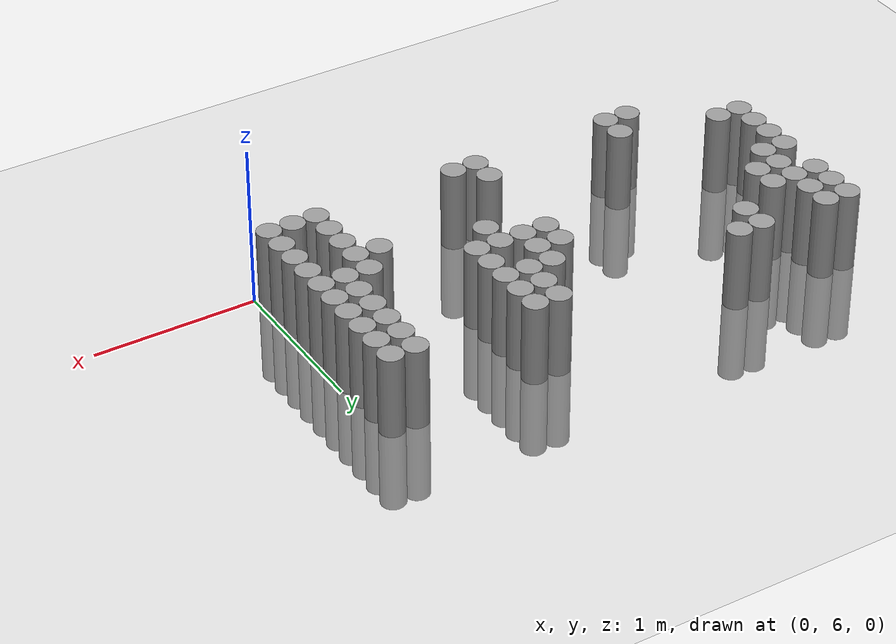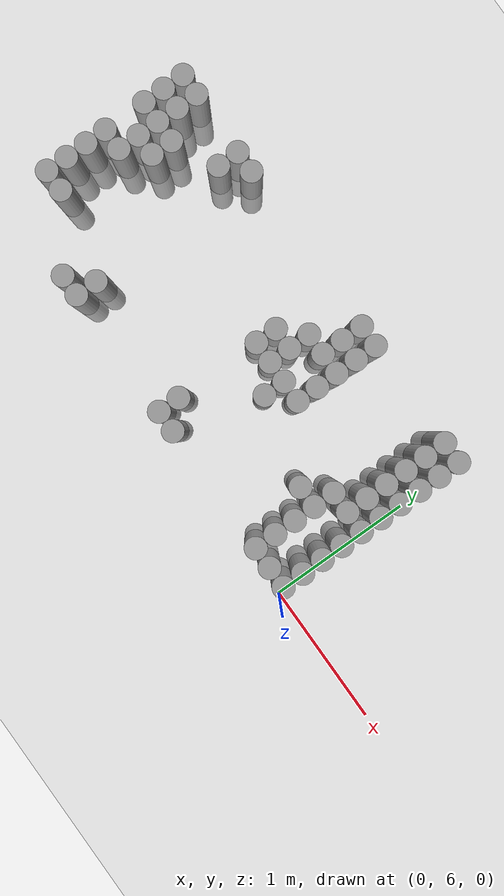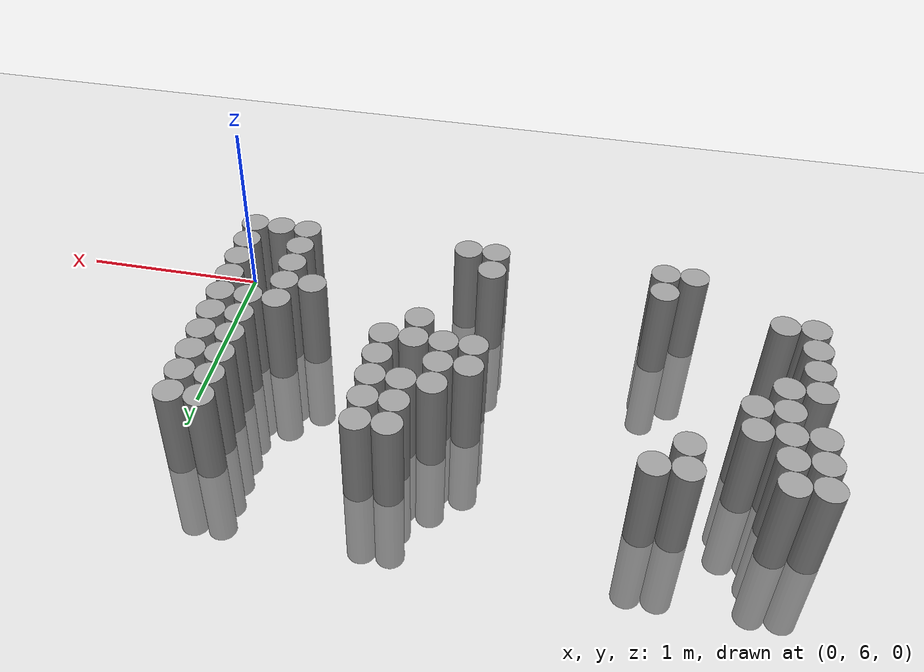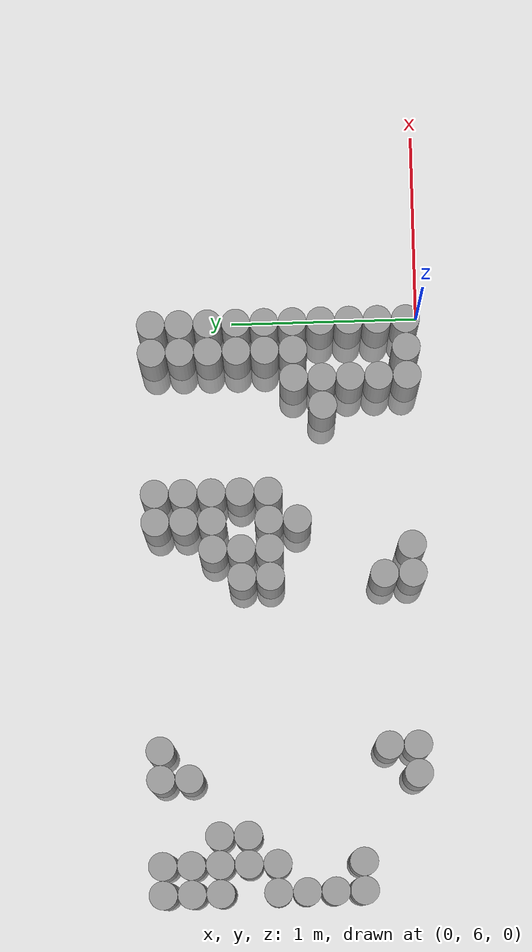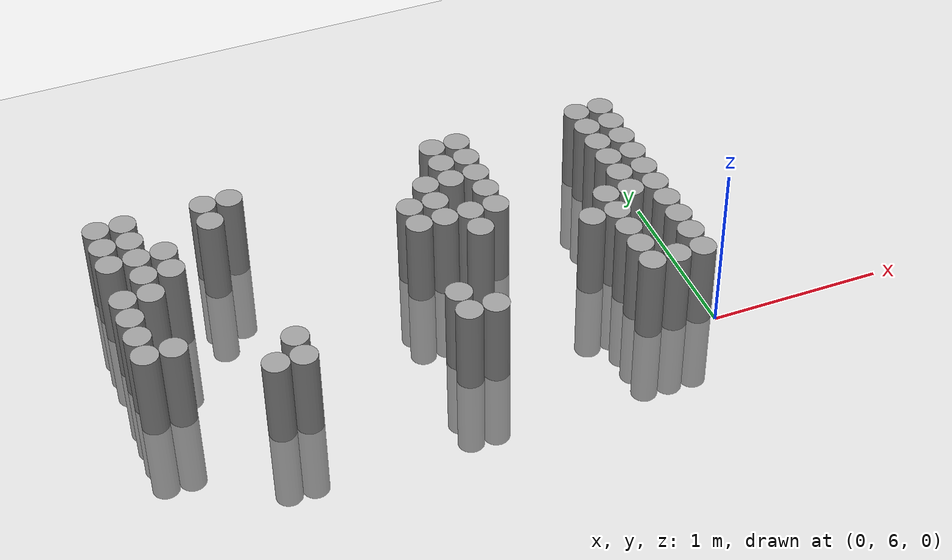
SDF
<sdf version="1.6">
 <world name="default">
  <model name="ground_plane">
   <static>1</static>
   <static>1</static>
   <link name="link">
    <collision name="collision">
     <geometry><plane><normal>0 0 1</normal><size>100 100</size></plane></geometry>
     <surface><friction><ode><mu>100</mu><mu2>50</mu2></ode></friction></surface>
    </collision>
    <visual name="visual">
     <cast_shadows>0</cast_shadows>
     <geometry><plane><normal>0 0 1</normal><size>100 100</size></plane></geometry>
     <material>
      <script><uri>file://media/materials/scripts/gazebo.material</uri><name>Gazebo/Grey</name></script>
     </material>
    </visual>
   </link>
  </model>
  <model name="unit_cylinder_176">
   <static>1</static>
   <pose>-3.075000 6.375000 0.000000 0.000000 0.000000 0.000000</pose>
   <link name="link">
    <inertial>
     <mass>1</mass>
     <inertia><ixx>0.145833</ixx><ixy>0</ixy><ixz>0</ixz><iyy>0.145833</iyy><iyz>0</iyz><izz>0.125</izz></inertia>
    </inertial>
    <collision name="collision">
     <geometry><cylinder><radius>0.075000</radius><length>1</length></cylinder></geometry>
    </collision>
    <visual name="visual">
     <geometry><cylinder><radius>0.075000</radius><length>1</length></cylinder></geometry>
     <material>
      <script><name>Gazebo/Grey</name><uri>file://media/materials/scripts/gazebo.material</uri></script>
     </material>
    </visual>
   </link>
  </model>
  <model name="unit_cylinder_177">
   <static>1</static>
   <pose>-3.075000 6.525000 0.000000 0.000000 0.000000 0.000000</pose>
   <link name="link">
    <inertial>
     <mass>1</mass>
     <inertia><ixx>0.145833</ixx><ixy>0</ixy><ixz>0</ixz><iyy>0.145833</iyy><iyz>0</iyz><izz>0.125</izz></inertia>
    </inertial>
    <collision name="collision">
     <geometry><cylinder><radius>0.075000</radius><length>1</length></cylinder></geometry>
    </collision>
    <visual name="visual">
     <geometry><cylinder><radius>0.075000</radius><length>1</length></cylinder></geometry>
     <material>
      <script><name>Gazebo/Grey</name><uri>file://media/materials/scripts/gazebo.material</uri></script>
     </material>
    </visual>
   </link>
  </model>
  <model name="unit_cylinder_178">
   <static>1</static>
   <pose>-3.075000 6.675000 0.000000 0.000000 0.000000 0.000000</pose>
   <link name="link">
    <inertial>
     <mass>1</mass>
     <inertia><ixx>0.145833</ixx><ixy>0</ixy><ixz>0</ixz><iyy>0.145833</iyy><iyz>0</iyz><izz>0.125</izz></inertia>
    </inertial>
    <collision name="collision">
     <geometry><cylinder><radius>0.075000</radius><length>1</length></cylinder></geometry>
    </collision>
    <visual name="visual">
     <geometry><cylinder><radius>0.075000</radius><length>1</length></cylinder></geometry>
     <material>
      <script><name>Gazebo/Grey</name><uri>file://media/materials/scripts/gazebo.material</uri></script>
     </material>
    </visual>
   </link>
  </model>
  <model name="unit_cylinder_179">
   <static>1</static>
   <pose>-3.075000 6.825000 0.000000 0.000000 0.000000 0.000000</pose>
   <link name="link">
    <inertial>
     <mass>1</mass>
     <inertia><ixx>0.145833</ixx><ixy>0</ixy><ixz>0</ixz><iyy>0.145833</iyy><iyz>0</iyz><izz>0.125</izz></inertia>
    </inertial>
    <collision name="collision">
     <geometry><cylinder><radius>0.075000</radius><length>1</length></cylinder></geometry>
    </collision>
    <visual name="visual">
     <geometry><cylinder><radius>0.075000</radius><length>1</length></cylinder></geometry>
     <material>
      <script><name>Gazebo/Grey</name><uri>file://media/materials/scripts/gazebo.material</uri></script>
     </material>
    </visual>
   </link>
  </model>
  <model name="unit_cylinder_180">
   <static>1</static>
   <pose>-3.075000 7.125000 0.000000 0.000000 0.000000 0.000000</pose>
   <link name="link">
    <inertial>
     <mass>1</mass>
     <inertia><ixx>0.145833</ixx><ixy>0</ixy><ixz>0</ixz><iyy>0.145833</iyy><iyz>0</iyz><izz>0.125</izz></inertia>
    </inertial>
    <collision name="collision">
     <geometry><cylinder><radius>0.075000</radius><length>1</length></cylinder></geometry>
    </collision>
    <visual name="visual">
     <geometry><cylinder><radius>0.075000</radius><length>1</length></cylinder></geometry>
     <material>
      <script><name>Gazebo/Grey</name><uri>file://media/materials/scripts/gazebo.material</uri></script>
     </material>
    </visual>
   </link>
  </model>
  <model name="unit_cylinder_181">
   <static>1</static>
   <pose>-3.075000 7.275000 0.000000 0.000000 0.000000 0.000000</pose>
   <link name="link">
    <inertial>
     <mass>1</mass>
     <inertia><ixx>0.145833</ixx><ixy>0</ixy><ixz>0</ixz><iyy>0.145833</iyy><iyz>0</iyz><izz>0.125</izz></inertia>
    </inertial>
    <collision name="collision">
     <geometry><cylinder><radius>0.075000</radius><length>1</length></cylinder></geometry>
    </collision>
    <visual name="visual">
     <geometry><cylinder><radius>0.075000</radius><length>1</length></cylinder></geometry>
     <material>
      <script><name>Gazebo/Grey</name><uri>file://media/materials/scripts/gazebo.material</uri></script>
     </material>
    </visual>
   </link>
  </model>
  <model name="unit_cylinder_182">
   <static>1</static>
   <pose>-3.075000 7.425000 0.000000 0.000000 0.000000 0.000000</pose>
   <link name="link">
    <inertial>
     <mass>1</mass>
     <inertia><ixx>0.145833</ixx><ixy>0</ixy><ixz>0</ixz><iyy>0.145833</iyy><iyz>0</iyz><izz>0.125</izz></inertia>
    </inertial>
    <collision name="collision">
     <geometry><cylinder><radius>0.075000</radius><length>1</length></cylinder></geometry>
    </collision>
    <visual name="visual">
     <geometry><cylinder><radius>0.075000</radius><length>1</length></cylinder></geometry>
     <material>
      <script><name>Gazebo/Grey</name><uri>file://media/materials/scripts/gazebo.material</uri></script>
     </material>
    </visual>
   </link>
  </model>
  <model name="unit_cylinder_185">
   <static>1</static>
   <pose>-2.925000 6.375000 0.000000 0.000000 0.000000 0.000000</pose>
   <link name="link">
    <inertial>
     <mass>1</mass>
     <inertia><ixx>0.145833</ixx><ixy>0</ixy><ixz>0</ixz><iyy>0.145833</iyy><iyz>0</iyz><izz>0.125</izz></inertia>
    </inertial>
    <collision name="collision">
     <geometry><cylinder><radius>0.075000</radius><length>1</length></cylinder></geometry>
    </collision>
    <visual name="visual">
     <geometry><cylinder><radius>0.075000</radius><length>1</length></cylinder></geometry>
     <material>
      <script><name>Gazebo/Grey</name><uri>file://media/materials/scripts/gazebo.material</uri></script>
     </material>
    </visual>
   </link>
  </model>
  <model name="unit_cylinder_186">
   <static>1</static>
   <pose>-2.925000 6.825000 0.000000 0.000000 0.000000 0.000000</pose>
   <link name="link">
    <inertial>
     <mass>1</mass>
     <inertia><ixx>0.145833</ixx><ixy>0</ixy><ixz>0</ixz><iyy>0.145833</iyy><iyz>0</iyz><izz>0.125</izz></inertia>
    </inertial>
    <collision name="collision">
     <geometry><cylinder><radius>0.075000</radius><length>1</length></cylinder></geometry>
    </collision>
    <visual name="visual">
     <geometry><cylinder><radius>0.075000</radius><length>1</length></cylinder></geometry>
     <material>
      <script><name>Gazebo/Grey</name><uri>file://media/materials/scripts/gazebo.material</uri></script>
     </material>
    </visual>
   </link>
  </model>
  <model name="unit_cylinder_187">
   <static>1</static>
   <pose>-2.925000 6.975000 0.000000 0.000000 0.000000 0.000000</pose>
   <link name="link">
    <inertial>
     <mass>1</mass>
     <inertia><ixx>0.145833</ixx><ixy>0</ixy><ixz>0</ixz><iyy>0.145833</iyy><iyz>0</iyz><izz>0.125</izz></inertia>
    </inertial>
    <collision name="collision">
     <geometry><cylinder><radius>0.075000</radius><length>1</length></cylinder></geometry>
    </collision>
    <visual name="visual">
     <geometry><cylinder><radius>0.075000</radius><length>1</length></cylinder></geometry>
     <material>
      <script><name>Gazebo/Grey</name><uri>file://media/materials/scripts/gazebo.material</uri></script>
     </material>
    </visual>
   </link>
  </model>
  <model name="unit_cylinder_188">
   <static>1</static>
   <pose>-2.925000 7.125000 0.000000 0.000000 0.000000 0.000000</pose>
   <link name="link">
    <inertial>
     <mass>1</mass>
     <inertia><ixx>0.145833</ixx><ixy>0</ixy><ixz>0</ixz><iyy>0.145833</iyy><iyz>0</iyz><izz>0.125</izz></inertia>
    </inertial>
    <collision name="collision">
     <geometry><cylinder><radius>0.075000</radius><length>1</length></cylinder></geometry>
    </collision>
    <visual name="visual">
     <geometry><cylinder><radius>0.075000</radius><length>1</length></cylinder></geometry>
     <material>
      <script><name>Gazebo/Grey</name><uri>file://media/materials/scripts/gazebo.material</uri></script>
     </material>
    </visual>
   </link>
  </model>
  <model name="unit_cylinder_189">
   <static>1</static>
   <pose>-2.925000 7.275000 0.000000 0.000000 0.000000 0.000000</pose>
   <link name="link">
    <inertial>
     <mass>1</mass>
     <inertia><ixx>0.145833</ixx><ixy>0</ixy><ixz>0</ixz><iyy>0.145833</iyy><iyz>0</iyz><izz>0.125</izz></inertia>
    </inertial>
    <collision name="collision">
     <geometry><cylinder><radius>0.075000</radius><length>1</length></cylinder></geometry>
    </collision>
    <visual name="visual">
     <geometry><cylinder><radius>0.075000</radius><length>1</length></cylinder></geometry>
     <material>
      <script><name>Gazebo/Grey</name><uri>file://media/materials/scripts/gazebo.material</uri></script>
     </material>
    </visual>
   </link>
  </model>
  <model name="unit_cylinder_190">
   <static>1</static>
   <pose>-2.925000 7.425000 0.000000 0.000000 0.000000 0.000000</pose>
   <link name="link">
    <inertial>
     <mass>1</mass>
     <inertia><ixx>0.145833</ixx><ixy>0</ixy><ixz>0</ixz><iyy>0.145833</iyy><iyz>0</iyz><izz>0.125</izz></inertia>
    </inertial>
    <collision name="collision">
     <geometry><cylinder><radius>0.075000</radius><length>1</length></cylinder></geometry>
    </collision>
    <visual name="visual">
     <geometry><cylinder><radius>0.075000</radius><length>1</length></cylinder></geometry>
     <material>
      <script><name>Gazebo/Grey</name><uri>file://media/materials/scripts/gazebo.material</uri></script>
     </material>
    </visual>
   </link>
  </model>
  <model name="unit_cylinder_192">
   <static>1</static>
   <pose>-2.775000 6.975000 0.000000 0.000000 0.000000 0.000000</pose>
   <link name="link">
    <inertial>
     <mass>1</mass>
     <inertia><ixx>0.145833</ixx><ixy>0</ixy><ixz>0</ixz><iyy>0.145833</iyy><iyz>0</iyz><izz>0.125</izz></inertia>
    </inertial>
    <collision name="collision">
     <geometry><cylinder><radius>0.075000</radius><length>1</length></cylinder></geometry>
    </collision>
    <visual name="visual">
     <geometry><cylinder><radius>0.075000</radius><length>1</length></cylinder></geometry>
     <material>
      <script><name>Gazebo/Grey</name><uri>file://media/materials/scripts/gazebo.material</uri></script>
     </material>
    </visual>
   </link>
  </model>
  <model name="unit_cylinder_193">
   <static>1</static>
   <pose>-2.775000 7.125000 0.000000 0.000000 0.000000 0.000000</pose>
   <link name="link">
    <inertial>
     <mass>1</mass>
     <inertia><ixx>0.145833</ixx><ixy>0</ixy><ixz>0</ixz><iyy>0.145833</iyy><iyz>0</iyz><izz>0.125</izz></inertia>
    </inertial>
    <collision name="collision">
     <geometry><cylinder><radius>0.075000</radius><length>1</length></cylinder></geometry>
    </collision>
    <visual name="visual">
     <geometry><cylinder><radius>0.075000</radius><length>1</length></cylinder></geometry>
     <material>
      <script><name>Gazebo/Grey</name><uri>file://media/materials/scripts/gazebo.material</uri></script>
     </material>
    </visual>
   </link>
  </model>
  <model name="unit_cylinder_200">
   <static>1</static>
   <pose>-2.475000 6.075000 0.000000 0.000000 0.000000 0.000000</pose>
   <link name="link">
    <inertial>
     <mass>1</mass>
     <inertia><ixx>0.145833</ixx><ixy>0</ixy><ixz>0</ixz><iyy>0.145833</iyy><iyz>0</iyz><izz>0.125</izz></inertia>
    </inertial>
    <collision name="collision">
     <geometry><cylinder><radius>0.075000</radius><length>1</length></cylinder></geometry>
    </collision>
    <visual name="visual">
     <geometry><cylinder><radius>0.075000</radius><length>1</length></cylinder></geometry>
     <material>
      <script><name>Gazebo/Grey</name><uri>file://media/materials/scripts/gazebo.material</uri></script>
     </material>
    </visual>
   </link>
  </model>
  <model name="unit_cylinder_201">
   <static>1</static>
   <pose>-2.475000 7.275000 0.000000 0.000000 0.000000 0.000000</pose>
   <link name="link">
    <inertial>
     <mass>1</mass>
     <inertia><ixx>0.145833</ixx><ixy>0</ixy><ixz>0</ixz><iyy>0.145833</iyy><iyz>0</iyz><izz>0.125</izz></inertia>
    </inertial>
    <collision name="collision">
     <geometry><cylinder><radius>0.075000</radius><length>1</length></cylinder></geometry>
    </collision>
    <visual name="visual">
     <geometry><cylinder><radius>0.075000</radius><length>1</length></cylinder></geometry>
     <material>
      <script><name>Gazebo/Grey</name><uri>file://media/materials/scripts/gazebo.material</uri></script>
     </material>
    </visual>
   </link>
  </model>
  <model name="unit_cylinder_202">
   <static>1</static>
   <pose>-2.475000 7.425000 0.000000 0.000000 0.000000 0.000000</pose>
   <link name="link">
    <inertial>
     <mass>1</mass>
     <inertia><ixx>0.145833</ixx><ixy>0</ixy><ixz>0</ixz><iyy>0.145833</iyy><iyz>0</iyz><izz>0.125</izz></inertia>
    </inertial>
    <collision name="collision">
     <geometry><cylinder><radius>0.075000</radius><length>1</length></cylinder></geometry>
    </collision>
    <visual name="visual">
     <geometry><cylinder><radius>0.075000</radius><length>1</length></cylinder></geometry>
     <material>
      <script><name>Gazebo/Grey</name><uri>file://media/materials/scripts/gazebo.material</uri></script>
     </material>
    </visual>
   </link>
  </model>
  <model name="unit_cylinder_208">
   <static>1</static>
   <pose>-2.325000 6.075000 0.000000 0.000000 0.000000 0.000000</pose>
   <link name="link">
    <inertial>
     <mass>1</mass>
     <inertia><ixx>0.145833</ixx><ixy>0</ixy><ixz>0</ixz><iyy>0.145833</iyy><iyz>0</iyz><izz>0.125</izz></inertia>
    </inertial>
    <collision name="collision">
     <geometry><cylinder><radius>0.075000</radius><length>1</length></cylinder></geometry>
    </collision>
    <visual name="visual">
     <geometry><cylinder><radius>0.075000</radius><length>1</length></cylinder></geometry>
     <material>
      <script><name>Gazebo/Grey</name><uri>file://media/materials/scripts/gazebo.material</uri></script>
     </material>
    </visual>
   </link>
  </model>
  <model name="unit_cylinder_209">
   <static>1</static>
   <pose>-2.325000 6.225000 0.000000 0.000000 0.000000 0.000000</pose>
   <link name="link">
    <inertial>
     <mass>1</mass>
     <inertia><ixx>0.145833</ixx><ixy>0</ixy><ixz>0</ixz><iyy>0.145833</iyy><iyz>0</iyz><izz>0.125</izz></inertia>
    </inertial>
    <collision name="collision">
     <geometry><cylinder><radius>0.075000</radius><length>1</length></cylinder></geometry>
    </collision>
    <visual name="visual">
     <geometry><cylinder><radius>0.075000</radius><length>1</length></cylinder></geometry>
     <material>
      <script><name>Gazebo/Grey</name><uri>file://media/materials/scripts/gazebo.material</uri></script>
     </material>
    </visual>
   </link>
  </model>
  <model name="unit_cylinder_210">
   <static>1</static>
   <pose>-2.325000 7.425000 0.000000 0.000000 0.000000 0.000000</pose>
   <link name="link">
    <inertial>
     <mass>1</mass>
     <inertia><ixx>0.145833</ixx><ixy>0</ixy><ixz>0</ixz><iyy>0.145833</iyy><iyz>0</iyz><izz>0.125</izz></inertia>
    </inertial>
    <collision name="collision">
     <geometry><cylinder><radius>0.075000</radius><length>1</length></cylinder></geometry>
    </collision>
    <visual name="visual">
     <geometry><cylinder><radius>0.075000</radius><length>1</length></cylinder></geometry>
     <material>
      <script><name>Gazebo/Grey</name><uri>file://media/materials/scripts/gazebo.material</uri></script>
     </material>
    </visual>
   </link>
  </model>
  <model name="unit_cylinder_215">
   <static>1</static>
   <pose>-1.425000 6.075000 0.000000 0.000000 0.000000 0.000000</pose>
   <link name="link">
    <inertial>
     <mass>1</mass>
     <inertia><ixx>0.145833</ixx><ixy>0</ixy><ixz>0</ixz><iyy>0.145833</iyy><iyz>0</iyz><izz>0.125</izz></inertia>
    </inertial>
    <collision name="collision">
     <geometry><cylinder><radius>0.075000</radius><length>1</length></cylinder></geometry>
    </collision>
    <visual name="visual">
     <geometry><cylinder><radius>0.075000</radius><length>1</length></cylinder></geometry>
     <material>
      <script><name>Gazebo/Grey</name><uri>file://media/materials/scripts/gazebo.material</uri></script>
     </material>
    </visual>
   </link>
  </model>
  <model name="unit_cylinder_216">
   <static>1</static>
   <pose>-1.425000 6.225000 0.000000 0.000000 0.000000 0.000000</pose>
   <link name="link">
    <inertial>
     <mass>1</mass>
     <inertia><ixx>0.145833</ixx><ixy>0</ixy><ixz>0</ixz><iyy>0.145833</iyy><iyz>0</iyz><izz>0.125</izz></inertia>
    </inertial>
    <collision name="collision">
     <geometry><cylinder><radius>0.075000</radius><length>1</length></cylinder></geometry>
    </collision>
    <visual name="visual">
     <geometry><cylinder><radius>0.075000</radius><length>1</length></cylinder></geometry>
     <material>
      <script><name>Gazebo/Grey</name><uri>file://media/materials/scripts/gazebo.material</uri></script>
     </material>
    </visual>
   </link>
  </model>
  <model name="unit_cylinder_217">
   <static>1</static>
   <pose>-1.425000 6.825000 0.000000 0.000000 0.000000 0.000000</pose>
   <link name="link">
    <inertial>
     <mass>1</mass>
     <inertia><ixx>0.145833</ixx><ixy>0</ixy><ixz>0</ixz><iyy>0.145833</iyy><iyz>0</iyz><izz>0.125</izz></inertia>
    </inertial>
    <collision name="collision">
     <geometry><cylinder><radius>0.075000</radius><length>1</length></cylinder></geometry>
    </collision>
    <visual name="visual">
     <geometry><cylinder><radius>0.075000</radius><length>1</length></cylinder></geometry>
     <material>
      <script><name>Gazebo/Grey</name><uri>file://media/materials/scripts/gazebo.material</uri></script>
     </material>
    </visual>
   </link>
  </model>
  <model name="unit_cylinder_218">
   <static>1</static>
   <pose>-1.425000 6.975000 0.000000 0.000000 0.000000 0.000000</pose>
   <link name="link">
    <inertial>
     <mass>1</mass>
     <inertia><ixx>0.145833</ixx><ixy>0</ixy><ixz>0</ixz><iyy>0.145833</iyy><iyz>0</iyz><izz>0.125</izz></inertia>
    </inertial>
    <collision name="collision">
     <geometry><cylinder><radius>0.075000</radius><length>1</length></cylinder></geometry>
    </collision>
    <visual name="visual">
     <geometry><cylinder><radius>0.075000</radius><length>1</length></cylinder></geometry>
     <material>
      <script><name>Gazebo/Grey</name><uri>file://media/materials/scripts/gazebo.material</uri></script>
     </material>
    </visual>
   </link>
  </model>
  <model name="unit_cylinder_219">
   <static>1</static>
   <pose>-1.275000 6.075000 0.000000 0.000000 0.000000 0.000000</pose>
   <link name="link">
    <inertial>
     <mass>1</mass>
     <inertia><ixx>0.145833</ixx><ixy>0</ixy><ixz>0</ixz><iyy>0.145833</iyy><iyz>0</iyz><izz>0.125</izz></inertia>
    </inertial>
    <collision name="collision">
     <geometry><cylinder><radius>0.075000</radius><length>1</length></cylinder></geometry>
    </collision>
    <visual name="visual">
     <geometry><cylinder><radius>0.075000</radius><length>1</length></cylinder></geometry>
     <material>
      <script><name>Gazebo/Grey</name><uri>file://media/materials/scripts/gazebo.material</uri></script>
     </material>
    </visual>
   </link>
  </model>
  <model name="unit_cylinder_220">
   <static>1</static>
   <pose>-1.275000 6.825000 0.000000 0.000000 0.000000 0.000000</pose>
   <link name="link">
    <inertial>
     <mass>1</mass>
     <inertia><ixx>0.145833</ixx><ixy>0</ixy><ixz>0</ixz><iyy>0.145833</iyy><iyz>0</iyz><izz>0.125</izz></inertia>
    </inertial>
    <collision name="collision">
     <geometry><cylinder><radius>0.075000</radius><length>1</length></cylinder></geometry>
    </collision>
    <visual name="visual">
     <geometry><cylinder><radius>0.075000</radius><length>1</length></cylinder></geometry>
     <material>
      <script><name>Gazebo/Grey</name><uri>file://media/materials/scripts/gazebo.material</uri></script>
     </material>
    </visual>
   </link>
  </model>
  <model name="unit_cylinder_221">
   <static>1</static>
   <pose>-1.275000 6.975000 0.000000 0.000000 0.000000 0.000000</pose>
   <link name="link">
    <inertial>
     <mass>1</mass>
     <inertia><ixx>0.145833</ixx><ixy>0</ixy><ixz>0</ixz><iyy>0.145833</iyy><iyz>0</iyz><izz>0.125</izz></inertia>
    </inertial>
    <collision name="collision">
     <geometry><cylinder><radius>0.075000</radius><length>1</length></cylinder></geometry>
    </collision>
    <visual name="visual">
     <geometry><cylinder><radius>0.075000</radius><length>1</length></cylinder></geometry>
     <material>
      <script><name>Gazebo/Grey</name><uri>file://media/materials/scripts/gazebo.material</uri></script>
     </material>
    </visual>
   </link>
  </model>
  <model name="unit_cylinder_222">
   <static>1</static>
   <pose>-1.275000 7.125000 0.000000 0.000000 0.000000 0.000000</pose>
   <link name="link">
    <inertial>
     <mass>1</mass>
     <inertia><ixx>0.145833</ixx><ixy>0</ixy><ixz>0</ixz><iyy>0.145833</iyy><iyz>0</iyz><izz>0.125</izz></inertia>
    </inertial>
    <collision name="collision">
     <geometry><cylinder><radius>0.075000</radius><length>1</length></cylinder></geometry>
    </collision>
    <visual name="visual">
     <geometry><cylinder><radius>0.075000</radius><length>1</length></cylinder></geometry>
     <material>
      <script><name>Gazebo/Grey</name><uri>file://media/materials/scripts/gazebo.material</uri></script>
     </material>
    </visual>
   </link>
  </model>
  <model name="unit_cylinder_224">
   <static>1</static>
   <pose>-1.125000 6.675000 0.000000 0.000000 0.000000 0.000000</pose>
   <link name="link">
    <inertial>
     <mass>1</mass>
     <inertia><ixx>0.145833</ixx><ixy>0</ixy><ixz>0</ixz><iyy>0.145833</iyy><iyz>0</iyz><izz>0.125</izz></inertia>
    </inertial>
    <collision name="collision">
     <geometry><cylinder><radius>0.075000</radius><length>1</length></cylinder></geometry>
    </collision>
    <visual name="visual">
     <geometry><cylinder><radius>0.075000</radius><length>1</length></cylinder></geometry>
     <material>
      <script><name>Gazebo/Grey</name><uri>file://media/materials/scripts/gazebo.material</uri></script>
     </material>
    </visual>
   </link>
  </model>
  <model name="unit_cylinder_225">
   <static>1</static>
   <pose>-1.125000 6.825000 0.000000 0.000000 0.000000 0.000000</pose>
   <link name="link">
    <inertial>
     <mass>1</mass>
     <inertia><ixx>0.145833</ixx><ixy>0</ixy><ixz>0</ixz><iyy>0.145833</iyy><iyz>0</iyz><izz>0.125</izz></inertia>
    </inertial>
    <collision name="collision">
     <geometry><cylinder><radius>0.075000</radius><length>1</length></cylinder></geometry>
    </collision>
    <visual name="visual">
     <geometry><cylinder><radius>0.075000</radius><length>1</length></cylinder></geometry>
     <material>
      <script><name>Gazebo/Grey</name><uri>file://media/materials/scripts/gazebo.material</uri></script>
     </material>
    </visual>
   </link>
  </model>
  <model name="unit_cylinder_226">
   <static>1</static>
   <pose>-1.125000 7.125000 0.000000 0.000000 0.000000 0.000000</pose>
   <link name="link">
    <inertial>
     <mass>1</mass>
     <inertia><ixx>0.145833</ixx><ixy>0</ixy><ixz>0</ixz><iyy>0.145833</iyy><iyz>0</iyz><izz>0.125</izz></inertia>
    </inertial>
    <collision name="collision">
     <geometry><cylinder><radius>0.075000</radius><length>1</length></cylinder></geometry>
    </collision>
    <visual name="visual">
     <geometry><cylinder><radius>0.075000</radius><length>1</length></cylinder></geometry>
     <material>
      <script><name>Gazebo/Grey</name><uri>file://media/materials/scripts/gazebo.material</uri></script>
     </material>
    </visual>
   </link>
  </model>
  <model name="unit_cylinder_227">
   <static>1</static>
   <pose>-1.125000 7.275000 0.000000 0.000000 0.000000 0.000000</pose>
   <link name="link">
    <inertial>
     <mass>1</mass>
     <inertia><ixx>0.145833</ixx><ixy>0</ixy><ixz>0</ixz><iyy>0.145833</iyy><iyz>0</iyz><izz>0.125</izz></inertia>
    </inertial>
    <collision name="collision">
     <geometry><cylinder><radius>0.075000</radius><length>1</length></cylinder></geometry>
    </collision>
    <visual name="visual">
     <geometry><cylinder><radius>0.075000</radius><length>1</length></cylinder></geometry>
     <material>
      <script><name>Gazebo/Grey</name><uri>file://media/materials/scripts/gazebo.material</uri></script>
     </material>
    </visual>
   </link>
  </model>
  <model name="unit_cylinder_228">
   <static>1</static>
   <pose>-1.125000 7.425000 0.000000 0.000000 0.000000 0.000000</pose>
   <link name="link">
    <inertial>
     <mass>1</mass>
     <inertia><ixx>0.145833</ixx><ixy>0</ixy><ixz>0</ixz><iyy>0.145833</iyy><iyz>0</iyz><izz>0.125</izz></inertia>
    </inertial>
    <collision name="collision">
     <geometry><cylinder><radius>0.075000</radius><length>1</length></cylinder></geometry>
    </collision>
    <visual name="visual">
     <geometry><cylinder><radius>0.075000</radius><length>1</length></cylinder></geometry>
     <material>
      <script><name>Gazebo/Grey</name><uri>file://media/materials/scripts/gazebo.material</uri></script>
     </material>
    </visual>
   </link>
  </model>
  <model name="unit_cylinder_232">
   <static>1</static>
   <pose>-0.975000 6.825000 0.000000 0.000000 0.000000 0.000000</pose>
   <link name="link">
    <inertial>
     <mass>1</mass>
     <inertia><ixx>0.145833</ixx><ixy>0</ixy><ixz>0</ixz><iyy>0.145833</iyy><iyz>0</iyz><izz>0.125</izz></inertia>
    </inertial>
    <collision name="collision">
     <geometry><cylinder><radius>0.075000</radius><length>1</length></cylinder></geometry>
    </collision>
    <visual name="visual">
     <geometry><cylinder><radius>0.075000</radius><length>1</length></cylinder></geometry>
     <material>
      <script><name>Gazebo/Grey</name><uri>file://media/materials/scripts/gazebo.material</uri></script>
     </material>
    </visual>
   </link>
  </model>
  <model name="unit_cylinder_233">
   <static>1</static>
   <pose>-0.975000 6.975000 0.000000 0.000000 0.000000 0.000000</pose>
   <link name="link">
    <inertial>
     <mass>1</mass>
     <inertia><ixx>0.145833</ixx><ixy>0</ixy><ixz>0</ixz><iyy>0.145833</iyy><iyz>0</iyz><izz>0.125</izz></inertia>
    </inertial>
    <collision name="collision">
     <geometry><cylinder><radius>0.075000</radius><length>1</length></cylinder></geometry>
    </collision>
    <visual name="visual">
     <geometry><cylinder><radius>0.075000</radius><length>1</length></cylinder></geometry>
     <material>
      <script><name>Gazebo/Grey</name><uri>file://media/materials/scripts/gazebo.material</uri></script>
     </material>
    </visual>
   </link>
  </model>
  <model name="unit_cylinder_234">
   <static>1</static>
   <pose>-0.975000 7.125000 0.000000 0.000000 0.000000 0.000000</pose>
   <link name="link">
    <inertial>
     <mass>1</mass>
     <inertia><ixx>0.145833</ixx><ixy>0</ixy><ixz>0</ixz><iyy>0.145833</iyy><iyz>0</iyz><izz>0.125</izz></inertia>
    </inertial>
    <collision name="collision">
     <geometry><cylinder><radius>0.075000</radius><length>1</length></cylinder></geometry>
    </collision>
    <visual name="visual">
     <geometry><cylinder><radius>0.075000</radius><length>1</length></cylinder></geometry>
     <material>
      <script><name>Gazebo/Grey</name><uri>file://media/materials/scripts/gazebo.material</uri></script>
     </material>
    </visual>
   </link>
  </model>
  <model name="unit_cylinder_235">
   <static>1</static>
   <pose>-0.975000 7.275000 0.000000 0.000000 0.000000 0.000000</pose>
   <link name="link">
    <inertial>
     <mass>1</mass>
     <inertia><ixx>0.145833</ixx><ixy>0</ixy><ixz>0</ixz><iyy>0.145833</iyy><iyz>0</iyz><izz>0.125</izz></inertia>
    </inertial>
    <collision name="collision">
     <geometry><cylinder><radius>0.075000</radius><length>1</length></cylinder></geometry>
    </collision>
    <visual name="visual">
     <geometry><cylinder><radius>0.075000</radius><length>1</length></cylinder></geometry>
     <material>
      <script><name>Gazebo/Grey</name><uri>file://media/materials/scripts/gazebo.material</uri></script>
     </material>
    </visual>
   </link>
  </model>
  <model name="unit_cylinder_236">
   <static>1</static>
   <pose>-0.975000 7.425000 0.000000 0.000000 0.000000 0.000000</pose>
   <link name="link">
    <inertial>
     <mass>1</mass>
     <inertia><ixx>0.145833</ixx><ixy>0</ixy><ixz>0</ixz><iyy>0.145833</iyy><iyz>0</iyz><izz>0.125</izz></inertia>
    </inertial>
    <collision name="collision">
     <geometry><cylinder><radius>0.075000</radius><length>1</length></cylinder></geometry>
    </collision>
    <visual name="visual">
     <geometry><cylinder><radius>0.075000</radius><length>1</length></cylinder></geometry>
     <material>
      <script><name>Gazebo/Grey</name><uri>file://media/materials/scripts/gazebo.material</uri></script>
     </material>
    </visual>
   </link>
  </model>
  <model name="unit_cylinder_249">
   <static>1</static>
   <pose>-0.525000 6.525000 0.000000 0.000000 0.000000 0.000000</pose>
   <link name="link">
    <inertial>
     <mass>1</mass>
     <inertia><ixx>0.145833</ixx><ixy>0</ixy><ixz>0</ixz><iyy>0.145833</iyy><iyz>0</iyz><izz>0.125</izz></inertia>
    </inertial>
    <collision name="collision">
     <geometry><cylinder><radius>0.075000</radius><length>1</length></cylinder></geometry>
    </collision>
    <visual name="visual">
     <geometry><cylinder><radius>0.075000</radius><length>1</length></cylinder></geometry>
     <material>
      <script><name>Gazebo/Grey</name><uri>file://media/materials/scripts/gazebo.material</uri></script>
     </material>
    </visual>
   </link>
  </model>
  <model name="unit_cylinder_255">
   <static>1</static>
   <pose>-0.375000 6.075000 0.000000 0.000000 0.000000 0.000000</pose>
   <link name="link">
    <inertial>
     <mass>1</mass>
     <inertia><ixx>0.145833</ixx><ixy>0</ixy><ixz>0</ixz><iyy>0.145833</iyy><iyz>0</iyz><izz>0.125</izz></inertia>
    </inertial>
    <collision name="collision">
     <geometry><cylinder><radius>0.075000</radius><length>1</length></cylinder></geometry>
    </collision>
    <visual name="visual">
     <geometry><cylinder><radius>0.075000</radius><length>1</length></cylinder></geometry>
     <material>
      <script><name>Gazebo/Grey</name><uri>file://media/materials/scripts/gazebo.material</uri></script>
     </material>
    </visual>
   </link>
  </model>
  <model name="unit_cylinder_256">
   <static>1</static>
   <pose>-0.375000 6.225000 0.000000 0.000000 0.000000 0.000000</pose>
   <link name="link">
    <inertial>
     <mass>1</mass>
     <inertia><ixx>0.145833</ixx><ixy>0</ixy><ixz>0</ixz><iyy>0.145833</iyy><iyz>0</iyz><izz>0.125</izz></inertia>
    </inertial>
    <collision name="collision">
     <geometry><cylinder><radius>0.075000</radius><length>1</length></cylinder></geometry>
    </collision>
    <visual name="visual">
     <geometry><cylinder><radius>0.075000</radius><length>1</length></cylinder></geometry>
     <material>
      <script><name>Gazebo/Grey</name><uri>file://media/materials/scripts/gazebo.material</uri></script>
     </material>
    </visual>
   </link>
  </model>
  <model name="unit_cylinder_257">
   <static>1</static>
   <pose>-0.375000 6.375000 0.000000 0.000000 0.000000 0.000000</pose>
   <link name="link">
    <inertial>
     <mass>1</mass>
     <inertia><ixx>0.145833</ixx><ixy>0</ixy><ixz>0</ixz><iyy>0.145833</iyy><iyz>0</iyz><izz>0.125</izz></inertia>
    </inertial>
    <collision name="collision">
     <geometry><cylinder><radius>0.075000</radius><length>1</length></cylinder></geometry>
    </collision>
    <visual name="visual">
     <geometry><cylinder><radius>0.075000</radius><length>1</length></cylinder></geometry>
     <material>
      <script><name>Gazebo/Grey</name><uri>file://media/materials/scripts/gazebo.material</uri></script>
     </material>
    </visual>
   </link>
  </model>
  <model name="unit_cylinder_258">
   <static>1</static>
   <pose>-0.375000 6.525000 0.000000 0.000000 0.000000 0.000000</pose>
   <link name="link">
    <inertial>
     <mass>1</mass>
     <inertia><ixx>0.145833</ixx><ixy>0</ixy><ixz>0</ixz><iyy>0.145833</iyy><iyz>0</iyz><izz>0.125</izz></inertia>
    </inertial>
    <collision name="collision">
     <geometry><cylinder><radius>0.075000</radius><length>1</length></cylinder></geometry>
    </collision>
    <visual name="visual">
     <geometry><cylinder><radius>0.075000</radius><length>1</length></cylinder></geometry>
     <material>
      <script><name>Gazebo/Grey</name><uri>file://media/materials/scripts/gazebo.material</uri></script>
     </material>
    </visual>
   </link>
  </model>
  <model name="unit_cylinder_259">
   <static>1</static>
   <pose>-0.375000 6.675000 0.000000 0.000000 0.000000 0.000000</pose>
   <link name="link">
    <inertial>
     <mass>1</mass>
     <inertia><ixx>0.145833</ixx><ixy>0</ixy><ixz>0</ixz><iyy>0.145833</iyy><iyz>0</iyz><izz>0.125</izz></inertia>
    </inertial>
    <collision name="collision">
     <geometry><cylinder><radius>0.075000</radius><length>1</length></cylinder></geometry>
    </collision>
    <visual name="visual">
     <geometry><cylinder><radius>0.075000</radius><length>1</length></cylinder></geometry>
     <material>
      <script><name>Gazebo/Grey</name><uri>file://media/materials/scripts/gazebo.material</uri></script>
     </material>
    </visual>
   </link>
  </model>
  <model name="unit_cylinder_267">
   <static>1</static>
   <pose>-0.225000 6.075000 0.000000 0.000000 0.000000 0.000000</pose>
   <link name="link">
    <inertial>
     <mass>1</mass>
     <inertia><ixx>0.145833</ixx><ixy>0</ixy><ixz>0</ixz><iyy>0.145833</iyy><iyz>0</iyz><izz>0.125</izz></inertia>
    </inertial>
    <collision name="collision">
     <geometry><cylinder><radius>0.075000</radius><length>1</length></cylinder></geometry>
    </collision>
    <visual name="visual">
     <geometry><cylinder><radius>0.075000</radius><length>1</length></cylinder></geometry>
     <material>
      <script><name>Gazebo/Grey</name><uri>file://media/materials/scripts/gazebo.material</uri></script>
     </material>
    </visual>
   </link>
  </model>
  <model name="unit_cylinder_268">
   <static>1</static>
   <pose>-0.225000 6.675000 0.000000 0.000000 0.000000 0.000000</pose>
   <link name="link">
    <inertial>
     <mass>1</mass>
     <inertia><ixx>0.145833</ixx><ixy>0</ixy><ixz>0</ixz><iyy>0.145833</iyy><iyz>0</iyz><izz>0.125</izz></inertia>
    </inertial>
    <collision name="collision">
     <geometry><cylinder><radius>0.075000</radius><length>1</length></cylinder></geometry>
    </collision>
    <visual name="visual">
     <geometry><cylinder><radius>0.075000</radius><length>1</length></cylinder></geometry>
     <material>
      <script><name>Gazebo/Grey</name><uri>file://media/materials/scripts/gazebo.material</uri></script>
     </material>
    </visual>
   </link>
  </model>
  <model name="unit_cylinder_269">
   <static>1</static>
   <pose>-0.225000 6.825000 0.000000 0.000000 0.000000 0.000000</pose>
   <link name="link">
    <inertial>
     <mass>1</mass>
     <inertia><ixx>0.145833</ixx><ixy>0</ixy><ixz>0</ixz><iyy>0.145833</iyy><iyz>0</iyz><izz>0.125</izz></inertia>
    </inertial>
    <collision name="collision">
     <geometry><cylinder><radius>0.075000</radius><length>1</length></cylinder></geometry>
    </collision>
    <visual name="visual">
     <geometry><cylinder><radius>0.075000</radius><length>1</length></cylinder></geometry>
     <material>
      <script><name>Gazebo/Grey</name><uri>file://media/materials/scripts/gazebo.material</uri></script>
     </material>
    </visual>
   </link>
  </model>
  <model name="unit_cylinder_270">
   <static>1</static>
   <pose>-0.225000 6.975000 0.000000 0.000000 0.000000 0.000000</pose>
   <link name="link">
    <inertial>
     <mass>1</mass>
     <inertia><ixx>0.145833</ixx><ixy>0</ixy><ixz>0</ixz><iyy>0.145833</iyy><iyz>0</iyz><izz>0.125</izz></inertia>
    </inertial>
    <collision name="collision">
     <geometry><cylinder><radius>0.075000</radius><length>1</length></cylinder></geometry>
    </collision>
    <visual name="visual">
     <geometry><cylinder><radius>0.075000</radius><length>1</length></cylinder></geometry>
     <material>
      <script><name>Gazebo/Grey</name><uri>file://media/materials/scripts/gazebo.material</uri></script>
     </material>
    </visual>
   </link>
  </model>
  <model name="unit_cylinder_271">
   <static>1</static>
   <pose>-0.225000 7.125000 0.000000 0.000000 0.000000 0.000000</pose>
   <link name="link">
    <inertial>
     <mass>1</mass>
     <inertia><ixx>0.145833</ixx><ixy>0</ixy><ixz>0</ixz><iyy>0.145833</iyy><iyz>0</iyz><izz>0.125</izz></inertia>
    </inertial>
    <collision name="collision">
     <geometry><cylinder><radius>0.075000</radius><length>1</length></cylinder></geometry>
    </collision>
    <visual name="visual">
     <geometry><cylinder><radius>0.075000</radius><length>1</length></cylinder></geometry>
     <material>
      <script><name>Gazebo/Grey</name><uri>file://media/materials/scripts/gazebo.material</uri></script>
     </material>
    </visual>
   </link>
  </model>
  <model name="unit_cylinder_272">
   <static>1</static>
   <pose>-0.225000 7.275000 0.000000 0.000000 0.000000 0.000000</pose>
   <link name="link">
    <inertial>
     <mass>1</mass>
     <inertia><ixx>0.145833</ixx><ixy>0</ixy><ixz>0</ixz><iyy>0.145833</iyy><iyz>0</iyz><izz>0.125</izz></inertia>
    </inertial>
    <collision name="collision">
     <geometry><cylinder><radius>0.075000</radius><length>1</length></cylinder></geometry>
    </collision>
    <visual name="visual">
     <geometry><cylinder><radius>0.075000</radius><length>1</length></cylinder></geometry>
     <material>
      <script><name>Gazebo/Grey</name><uri>file://media/materials/scripts/gazebo.material</uri></script>
     </material>
    </visual>
   </link>
  </model>
  <model name="unit_cylinder_273">
   <static>1</static>
   <pose>-0.225000 7.425000 0.000000 0.000000 0.000000 0.000000</pose>
   <link name="link">
    <inertial>
     <mass>1</mass>
     <inertia><ixx>0.145833</ixx><ixy>0</ixy><ixz>0</ixz><iyy>0.145833</iyy><iyz>0</iyz><izz>0.125</izz></inertia>
    </inertial>
    <collision name="collision">
     <geometry><cylinder><radius>0.075000</radius><length>1</length></cylinder></geometry>
    </collision>
    <visual name="visual">
     <geometry><cylinder><radius>0.075000</radius><length>1</length></cylinder></geometry>
     <material>
      <script><name>Gazebo/Grey</name><uri>file://media/materials/scripts/gazebo.material</uri></script>
     </material>
    </visual>
   </link>
  </model>
  <model name="unit_cylinder_288">
   <static>1</static>
   <pose>-0.075000 6.075000 0.000000 0.000000 0.000000 0.000000</pose>
   <link name="link">
    <inertial>
     <mass>1</mass>
     <inertia><ixx>0.145833</ixx><ixy>0</ixy><ixz>0</ixz><iyy>0.145833</iyy><iyz>0</iyz><izz>0.125</izz></inertia>
    </inertial>
    <collision name="collision">
     <geometry><cylinder><radius>0.075000</radius><length>1</length></cylinder></geometry>
    </collision>
    <visual name="visual">
     <geometry><cylinder><radius>0.075000</radius><length>1</length></cylinder></geometry>
     <material>
      <script><name>Gazebo/Grey</name><uri>file://media/materials/scripts/gazebo.material</uri></script>
     </material>
    </visual>
   </link>
  </model>
  <model name="unit_cylinder_289">
   <static>1</static>
   <pose>-0.075000 6.225000 0.000000 0.000000 0.000000 0.000000</pose>
   <link name="link">
    <inertial>
     <mass>1</mass>
     <inertia><ixx>0.145833</ixx><ixy>0</ixy><ixz>0</ixz><iyy>0.145833</iyy><iyz>0</iyz><izz>0.125</izz></inertia>
    </inertial>
    <collision name="collision">
     <geometry><cylinder><radius>0.075000</radius><length>1</length></cylinder></geometry>
    </collision>
    <visual name="visual">
     <geometry><cylinder><radius>0.075000</radius><length>1</length></cylinder></geometry>
     <material>
      <script><name>Gazebo/Grey</name><uri>file://media/materials/scripts/gazebo.material</uri></script>
     </material>
    </visual>
   </link>
  </model>
  <model name="unit_cylinder_290">
   <static>1</static>
   <pose>-0.075000 6.375000 0.000000 0.000000 0.000000 0.000000</pose>
   <link name="link">
    <inertial>
     <mass>1</mass>
     <inertia><ixx>0.145833</ixx><ixy>0</ixy><ixz>0</ixz><iyy>0.145833</iyy><iyz>0</iyz><izz>0.125</izz></inertia>
    </inertial>
    <collision name="collision">
     <geometry><cylinder><radius>0.075000</radius><length>1</length></cylinder></geometry>
    </collision>
    <visual name="visual">
     <geometry><cylinder><radius>0.075000</radius><length>1</length></cylinder></geometry>
     <material>
      <script><name>Gazebo/Grey</name><uri>file://media/materials/scripts/gazebo.material</uri></script>
     </material>
    </visual>
   </link>
  </model>
  <model name="unit_cylinder_291">
   <static>1</static>
   <pose>-0.075000 6.525000 0.000000 0.000000 0.000000 0.000000</pose>
   <link name="link">
    <inertial>
     <mass>1</mass>
     <inertia><ixx>0.145833</ixx><ixy>0</ixy><ixz>0</ixz><iyy>0.145833</iyy><iyz>0</iyz><izz>0.125</izz></inertia>
    </inertial>
    <collision name="collision">
     <geometry><cylinder><radius>0.075000</radius><length>1</length></cylinder></geometry>
    </collision>
    <visual name="visual">
     <geometry><cylinder><radius>0.075000</radius><length>1</length></cylinder></geometry>
     <material>
      <script><name>Gazebo/Grey</name><uri>file://media/materials/scripts/gazebo.material</uri></script>
     </material>
    </visual>
   </link>
  </model>
  <model name="unit_cylinder_292">
   <static>1</static>
   <pose>-0.075000 6.675000 0.000000 0.000000 0.000000 0.000000</pose>
   <link name="link">
    <inertial>
     <mass>1</mass>
     <inertia><ixx>0.145833</ixx><ixy>0</ixy><ixz>0</ixz><iyy>0.145833</iyy><iyz>0</iyz><izz>0.125</izz></inertia>
    </inertial>
    <collision name="collision">
     <geometry><cylinder><radius>0.075000</radius><length>1</length></cylinder></geometry>
    </collision>
    <visual name="visual">
     <geometry><cylinder><radius>0.075000</radius><length>1</length></cylinder></geometry>
     <material>
      <script><name>Gazebo/Grey</name><uri>file://media/materials/scripts/gazebo.material</uri></script>
     </material>
    </visual>
   </link>
  </model>
  <model name="unit_cylinder_293">
   <static>1</static>
   <pose>-0.075000 6.825000 0.000000 0.000000 0.000000 0.000000</pose>
   <link name="link">
    <inertial>
     <mass>1</mass>
     <inertia><ixx>0.145833</ixx><ixy>0</ixy><ixz>0</ixz><iyy>0.145833</iyy><iyz>0</iyz><izz>0.125</izz></inertia>
    </inertial>
    <collision name="collision">
     <geometry><cylinder><radius>0.075000</radius><length>1</length></cylinder></geometry>
    </collision>
    <visual name="visual">
     <geometry><cylinder><radius>0.075000</radius><length>1</length></cylinder></geometry>
     <material>
      <script><name>Gazebo/Grey</name><uri>file://media/materials/scripts/gazebo.material</uri></script>
     </material>
    </visual>
   </link>
  </model>
  <model name="unit_cylinder_294">
   <static>1</static>
   <pose>-0.075000 6.975000 0.000000 0.000000 0.000000 0.000000</pose>
   <link name="link">
    <inertial>
     <mass>1</mass>
     <inertia><ixx>0.145833</ixx><ixy>0</ixy><ixz>0</ixz><iyy>0.145833</iyy><iyz>0</iyz><izz>0.125</izz></inertia>
    </inertial>
    <collision name="collision">
     <geometry><cylinder><radius>0.075000</radius><length>1</length></cylinder></geometry>
    </collision>
    <visual name="visual">
     <geometry><cylinder><radius>0.075000</radius><length>1</length></cylinder></geometry>
     <material>
      <script><name>Gazebo/Grey</name><uri>file://media/materials/scripts/gazebo.material</uri></script>
     </material>
    </visual>
   </link>
  </model>
  <model name="unit_cylinder_295">
   <static>1</static>
   <pose>-0.075000 7.125000 0.000000 0.000000 0.000000 0.000000</pose>
   <link name="link">
    <inertial>
     <mass>1</mass>
     <inertia><ixx>0.145833</ixx><ixy>0</ixy><ixz>0</ixz><iyy>0.145833</iyy><iyz>0</iyz><izz>0.125</izz></inertia>
    </inertial>
    <collision name="collision">
     <geometry><cylinder><radius>0.075000</radius><length>1</length></cylinder></geometry>
    </collision>
    <visual name="visual">
     <geometry><cylinder><radius>0.075000</radius><length>1</length></cylinder></geometry>
     <material>
      <script><name>Gazebo/Grey</name><uri>file://media/materials/scripts/gazebo.material</uri></script>
     </material>
    </visual>
   </link>
  </model>
  <model name="unit_cylinder_296">
   <static>1</static>
   <pose>-0.075000 7.275000 0.000000 0.000000 0.000000 0.000000</pose>
   <link name="link">
    <inertial>
     <mass>1</mass>
     <inertia><ixx>0.145833</ixx><ixy>0</ixy><ixz>0</ixz><iyy>0.145833</iyy><iyz>0</iyz><izz>0.125</izz></inertia>
    </inertial>
    <collision name="collision">
     <geometry><cylinder><radius>0.075000</radius><length>1</length></cylinder></geometry>
    </collision>
    <visual name="visual">
     <geometry><cylinder><radius>0.075000</radius><length>1</length></cylinder></geometry>
     <material>
      <script><name>Gazebo/Grey</name><uri>file://media/materials/scripts/gazebo.material</uri></script>
     </material>
    </visual>
   </link>
  </model>
  <model name="unit_cylinder_297">
   <static>1</static>
   <pose>-0.075000 7.425000 0.000000 0.000000 0.000000 0.000000</pose>
   <link name="link">
    <inertial>
     <mass>1</mass>
     <inertia><ixx>0.145833</ixx><ixy>0</ixy><ixz>0</ixz><iyy>0.145833</iyy><iyz>0</iyz><izz>0.125</izz></inertia>
    </inertial>
    <collision name="collision">
     <geometry><cylinder><radius>0.075000</radius><length>1</length></cylinder></geometry>
    </collision>
    <visual name="visual">
     <geometry><cylinder><radius>0.075000</radius><length>1</length></cylinder></geometry>
     <material>
      <script><name>Gazebo/Grey</name><uri>file://media/materials/scripts/gazebo.material</uri></script>
     </material>
    </visual>
   </link>
  </model>
 </world>
</sdf>
